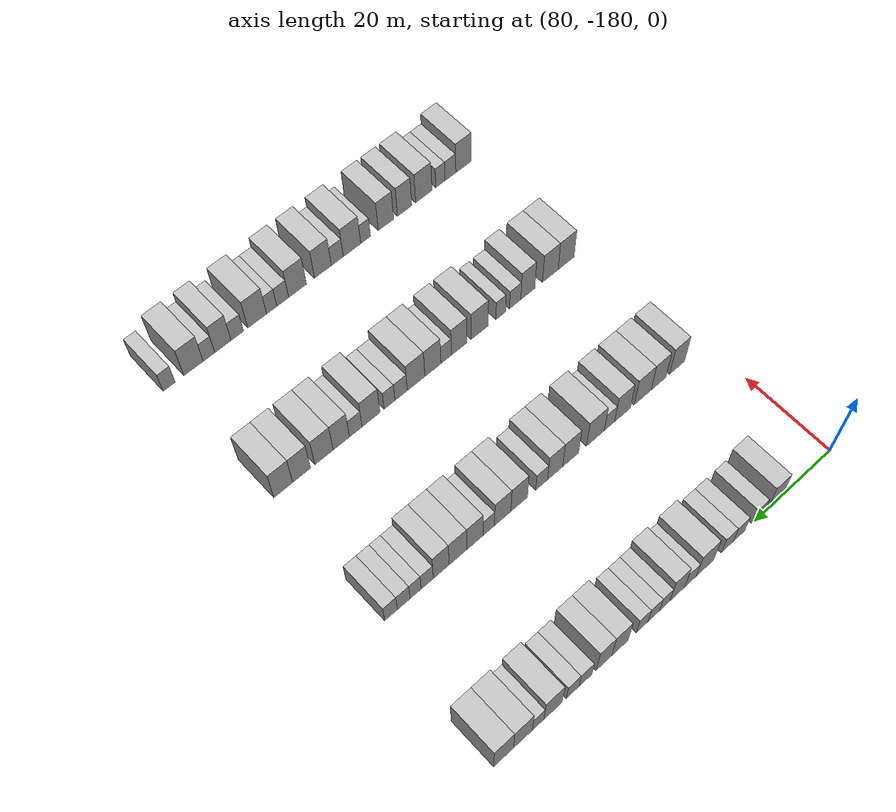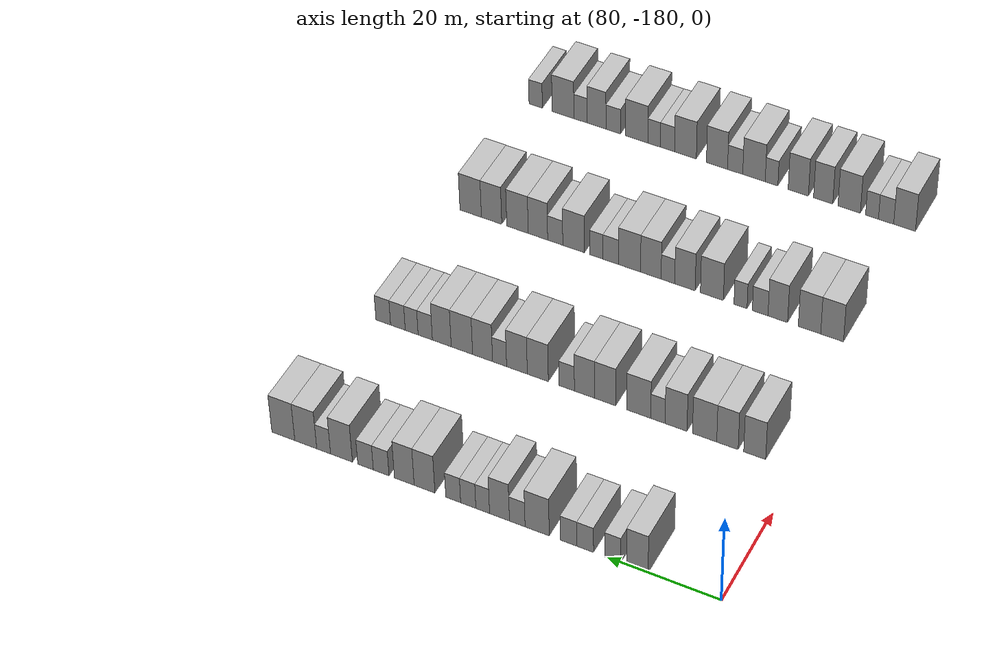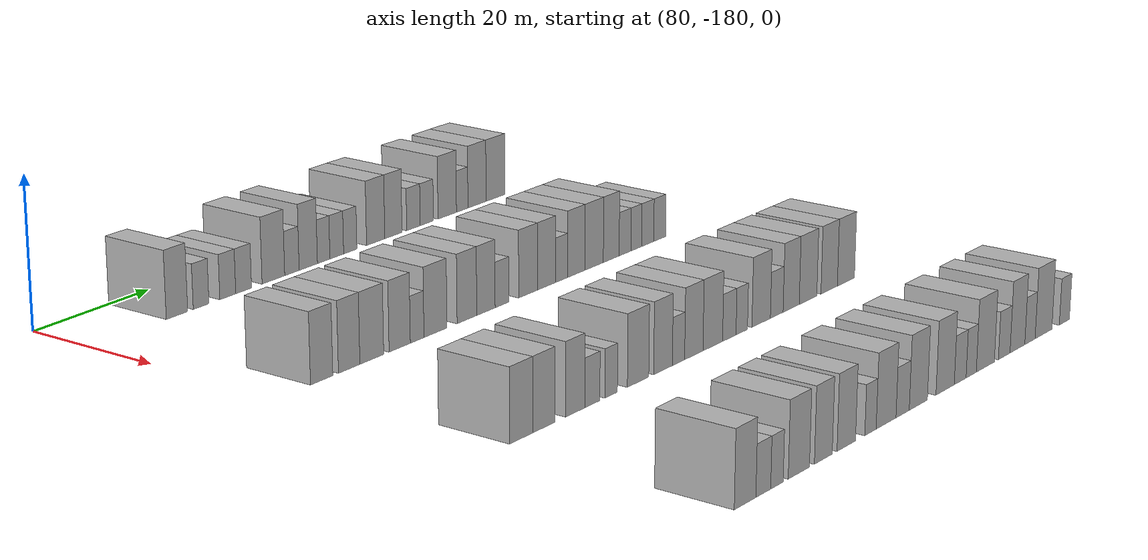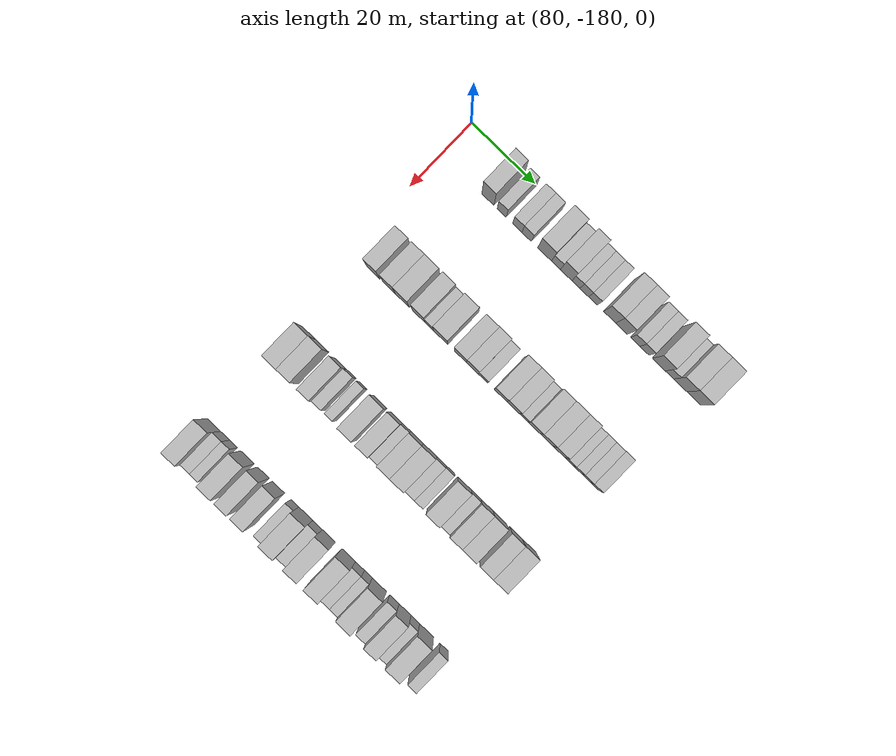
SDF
<sdf version="1.6">
 <world name="default">
  <model name="building_555">
   <static>1</static>
   <pose>85.0000 -165.1987 0 0.000000 0.000000 0.000000</pose>
   <link name="link">
    <pose>0 0 4.50 0 0 0</pose>
    <collision name="collision"><geometry><box><size>10.0000 3.8250 9.0000</size></box></geometry></collision>
    <visual name="visual">
     <cast_shadows>0</cast_shadows>
     <geometry><box><size>10.0000 3.8250 9.0000</size></box></geometry>
     <material>
      <script>
       <uri>model://HANNAS_wall/materials/scripts</uri>
       <uri>model://HANNAS_wall/materials/textures</uri>
       <name>vrc/HANNAS_wall</name>
      </script>
     </material>
    </visual>
   </link>
  </model>
  <model name="building_556">
   <static>1</static>
   <pose>85.0000 -160.8589 0 0.000000 0.000000 0.000000</pose>
   <link name="link">
    <pose>0 0 3.00 0 0 0</pose>
    <collision name="collision"><geometry><box><size>10.0000 2.8546 6.0000</size></box></geometry></collision>
    <visual name="visual">
     <cast_shadows>0</cast_shadows>
     <geometry><box><size>10.0000 2.8546 6.0000</size></box></geometry>
     <material>
      <script>
       <uri>model://HANNAS_wall/materials/scripts</uri>
       <uri>model://HANNAS_wall/materials/textures</uri>
       <name>vrc/HANNAS_wall</name>
      </script>
     </material>
    </visual>
   </link>
  </model>
  <model name="building_557">
   <static>1</static>
   <pose>85.0000 -155.9549 0 0.000000 0.000000 0.000000</pose>
   <link name="link">
    <pose>0 0 3.00 0 0 0</pose>
    <collision name="collision"><geometry><box><size>10.0000 2.9532 6.0000</size></box></geometry></collision>
    <visual name="visual">
     <cast_shadows>0</cast_shadows>
     <geometry><box><size>10.0000 2.9532 6.0000</size></box></geometry>
     <material>
      <script>
       <uri>model://HANNAS_wall/materials/scripts</uri>
       <uri>model://HANNAS_wall/materials/textures</uri>
       <name>vrc/HANNAS_wall</name>
      </script>
     </material>
    </visual>
   </link>
  </model>
  <model name="building_558">
   <static>1</static>
   <pose>85.0000 -152.9901 0 0.000000 0.000000 0.000000</pose>
   <link name="link">
    <pose>0 0 3.00 0 0 0</pose>
    <collision name="collision"><geometry><box><size>10.0000 2.9763 6.0000</size></box></geometry></collision>
    <visual name="visual">
     <cast_shadows>0</cast_shadows>
     <geometry><box><size>10.0000 2.9763 6.0000</size></box></geometry>
     <material>
      <script>
       <uri>model://HANNAS_wall/materials/scripts</uri>
       <uri>model://HANNAS_wall/materials/textures</uri>
       <name>vrc/HANNAS_wall</name>
      </script>
     </material>
    </visual>
   </link>
  </model>
  <model name="building_559">
   <static>1</static>
   <pose>85.0000 -147.3198 0 0.000000 0.000000 0.000000</pose>
   <link name="link">
    <pose>0 0 4.50 0 0 0</pose>
    <collision name="collision"><geometry><box><size>10.0000 4.3644 9.0000</size></box></geometry></collision>
    <visual name="visual">
     <cast_shadows>0</cast_shadows>
     <geometry><box><size>10.0000 4.3644 9.0000</size></box></geometry>
     <material>
      <script>
       <uri>model://HANNAS_wall/materials/scripts</uri>
       <uri>model://HANNAS_wall/materials/textures</uri>
       <name>vrc/HANNAS_wall</name>
      </script>
     </material>
    </visual>
   </link>
  </model>
  <model name="building_560">
   <static>1</static>
   <pose>85.0000 -143.7266 0 0.000000 0.000000 0.000000</pose>
   <link name="link">
    <pose>0 0 3.00 0 0 0</pose>
    <collision name="collision"><geometry><box><size>10.0000 2.8221 6.0000</size></box></geometry></collision>
    <visual name="visual">
     <cast_shadows>0</cast_shadows>
     <geometry><box><size>10.0000 2.8221 6.0000</size></box></geometry>
     <material>
      <script>
       <uri>model://HANNAS_wall/materials/scripts</uri>
       <uri>model://HANNAS_wall/materials/textures</uri>
       <name>vrc/HANNAS_wall</name>
      </script>
     </material>
    </visual>
   </link>
  </model>
  <model name="building_561">
   <static>1</static>
   <pose>85.0000 -140.5045 0 0.000000 0.000000 0.000000</pose>
   <link name="link">
    <pose>0 0 4.50 0 0 0</pose>
    <collision name="collision"><geometry><box><size>10.0000 3.6221 9.0000</size></box></geometry></collision>
    <visual name="visual">
     <cast_shadows>0</cast_shadows>
     <geometry><box><size>10.0000 3.6221 9.0000</size></box></geometry>
     <material>
      <script>
       <uri>model://HANNAS_wall/materials/scripts</uri>
       <uri>model://HANNAS_wall/materials/textures</uri>
       <name>vrc/HANNAS_wall</name>
      </script>
     </material>
    </visual>
   </link>
  </model>
  <model name="building_562">
   <static>1</static>
   <pose>85.0000 -137.4415 0 0.000000 0.000000 0.000000</pose>
   <link name="link">
    <pose>0 0 3.00 0 0 0</pose>
    <collision name="collision"><geometry><box><size>10.0000 2.5038 6.0000</size></box></geometry></collision>
    <visual name="visual">
     <cast_shadows>0</cast_shadows>
     <geometry><box><size>10.0000 2.5038 6.0000</size></box></geometry>
     <material>
      <script>
       <uri>model://HANNAS_wall/materials/scripts</uri>
       <uri>model://HANNAS_wall/materials/textures</uri>
       <name>vrc/HANNAS_wall</name>
      </script>
     </material>
    </visual>
   </link>
  </model>
  <model name="building_563">
   <static>1</static>
   <pose>85.0000 -134.7979 0 0.000000 0.000000 0.000000</pose>
   <link name="link">
    <pose>0 0 3.00 0 0 0</pose>
    <collision name="collision"><geometry><box><size>10.0000 2.7836 6.0000</size></box></geometry></collision>
    <visual name="visual">
     <cast_shadows>0</cast_shadows>
     <geometry><box><size>10.0000 2.7836 6.0000</size></box></geometry>
     <material>
      <script>
       <uri>model://HANNAS_wall/materials/scripts</uri>
       <uri>model://HANNAS_wall/materials/textures</uri>
       <name>vrc/HANNAS_wall</name>
      </script>
     </material>
    </visual>
   </link>
  </model>
  <model name="building_564">
   <static>1</static>
   <pose>85.0000 -132.0435 0 0.000000 0.000000 0.000000</pose>
   <link name="link">
    <pose>0 0 3.00 0 0 0</pose>
    <collision name="collision"><geometry><box><size>10.0000 2.7252 6.0000</size></box></geometry></collision>
    <visual name="visual">
     <cast_shadows>0</cast_shadows>
     <geometry><box><size>10.0000 2.7252 6.0000</size></box></geometry>
     <material>
      <script>
       <uri>model://HANNAS_wall/materials/scripts</uri>
       <uri>model://HANNAS_wall/materials/textures</uri>
       <name>vrc/HANNAS_wall</name>
      </script>
     </material>
    </visual>
   </link>
  </model>
  <model name="building_565">
   <static>1</static>
   <pose>85.0000 -126.7654 0 0.000000 0.000000 0.000000</pose>
   <link name="link">
    <pose>0 0 4.50 0 0 0</pose>
    <collision name="collision"><geometry><box><size>10.0000 3.8309 9.0000</size></box></geometry></collision>
    <visual name="visual">
     <cast_shadows>0</cast_shadows>
     <geometry><box><size>10.0000 3.8309 9.0000</size></box></geometry>
     <material>
      <script>
       <uri>model://HANNAS_wall/materials/scripts</uri>
       <uri>model://HANNAS_wall/materials/textures</uri>
       <name>vrc/HANNAS_wall</name>
      </script>
     </material>
    </visual>
   </link>
  </model>
  <model name="building_566">
   <static>1</static>
   <pose>85.0000 -123.0200 0 0.000000 0.000000 0.000000</pose>
   <link name="link">
    <pose>0 0 4.50 0 0 0</pose>
    <collision name="collision"><geometry><box><size>10.0000 3.6599 9.0000</size></box></geometry></collision>
    <visual name="visual">
     <cast_shadows>0</cast_shadows>
     <geometry><box><size>10.0000 3.6599 9.0000</size></box></geometry>
     <material>
      <script>
       <uri>model://HANNAS_wall/materials/scripts</uri>
       <uri>model://HANNAS_wall/materials/textures</uri>
       <name>vrc/HANNAS_wall</name>
      </script>
     </material>
    </visual>
   </link>
  </model>
  <model name="building_567">
   <static>1</static>
   <pose>85.0000 -118.7253 0 0.000000 0.000000 0.000000</pose>
   <link name="link">
    <pose>0 0 3.00 0 0 0</pose>
    <collision name="collision"><geometry><box><size>10.0000 2.9295 6.0000</size></box></geometry></collision>
    <visual name="visual">
     <cast_shadows>0</cast_shadows>
     <geometry><box><size>10.0000 2.9295 6.0000</size></box></geometry>
     <material>
      <script>
       <uri>model://HANNAS_wall/materials/scripts</uri>
       <uri>model://HANNAS_wall/materials/textures</uri>
       <name>vrc/HANNAS_wall</name>
      </script>
     </material>
    </visual>
   </link>
  </model>
  <model name="building_568">
   <static>1</static>
   <pose>85.0000 -115.8086 0 0.000000 0.000000 0.000000</pose>
   <link name="link">
    <pose>0 0 3.00 0 0 0</pose>
    <collision name="collision"><geometry><box><size>10.0000 2.9038 6.0000</size></box></geometry></collision>
    <visual name="visual">
     <cast_shadows>0</cast_shadows>
     <geometry><box><size>10.0000 2.9038 6.0000</size></box></geometry>
     <material>
      <script>
       <uri>model://HANNAS_wall/materials/scripts</uri>
       <uri>model://HANNAS_wall/materials/textures</uri>
       <name>vrc/HANNAS_wall</name>
      </script>
     </material>
    </visual>
   </link>
  </model>
  <model name="building_569">
   <static>1</static>
   <pose>85.0000 -111.3008 0 0.000000 0.000000 0.000000</pose>
   <link name="link">
    <pose>0 0 4.50 0 0 0</pose>
    <collision name="collision"><geometry><box><size>10.0000 4.1119 9.0000</size></box></geometry></collision>
    <visual name="visual">
     <cast_shadows>0</cast_shadows>
     <geometry><box><size>10.0000 4.1119 9.0000</size></box></geometry>
     <material>
      <script>
       <uri>model://HANNAS_wall/materials/scripts</uri>
       <uri>model://HANNAS_wall/materials/textures</uri>
       <name>vrc/HANNAS_wall</name>
      </script>
     </material>
    </visual>
   </link>
  </model>
  <model name="building_570">
   <static>1</static>
   <pose>85.0000 -107.9430 0 0.000000 0.000000 0.000000</pose>
   <link name="link">
    <pose>0 0 3.00 0 0 0</pose>
    <collision name="collision"><geometry><box><size>10.0000 2.6037 6.0000</size></box></geometry></collision>
    <visual name="visual">
     <cast_shadows>0</cast_shadows>
     <geometry><box><size>10.0000 2.6037 6.0000</size></box></geometry>
     <material>
      <script>
       <uri>model://HANNAS_wall/materials/scripts</uri>
       <uri>model://HANNAS_wall/materials/textures</uri>
       <name>vrc/HANNAS_wall</name>
      </script>
     </material>
    </visual>
   </link>
  </model>
  <model name="building_571">
   <static>1</static>
   <pose>85.0000 -104.5629 0 0.000000 0.000000 0.000000</pose>
   <link name="link">
    <pose>0 0 4.50 0 0 0</pose>
    <collision name="collision"><geometry><box><size>10.0000 4.1564 9.0000</size></box></geometry></collision>
    <visual name="visual">
     <cast_shadows>0</cast_shadows>
     <geometry><box><size>10.0000 4.1564 9.0000</size></box></geometry>
     <material>
      <script>
       <uri>model://HANNAS_wall/materials/scripts</uri>
       <uri>model://HANNAS_wall/materials/textures</uri>
       <name>vrc/HANNAS_wall</name>
      </script>
     </material>
    </visual>
   </link>
  </model>
  <model name="building_572">
   <static>1</static>
   <pose>85.0000 -100.3070 0 0.000000 0.000000 0.000000</pose>
   <link name="link">
    <pose>0 0 4.50 0 0 0</pose>
    <collision name="collision"><geometry><box><size>10.0000 4.3554 9.0000</size></box></geometry></collision>
    <visual name="visual">
     <cast_shadows>0</cast_shadows>
     <geometry><box><size>10.0000 4.3554 9.0000</size></box></geometry>
     <material>
      <script>
       <uri>model://HANNAS_wall/materials/scripts</uri>
       <uri>model://HANNAS_wall/materials/textures</uri>
       <name>vrc/HANNAS_wall</name>
      </script>
     </material>
    </visual>
   </link>
  </model>
  <model name="building_786">
   <static>1</static>
   <pose>115.0000 -172.2910 0 0.000000 0.000000 0.000000</pose>
   <link name="link">
    <pose>0 0 4.50 0 0 0</pose>
    <collision name="collision"><geometry><box><size>10.0000 3.9577 9.0000</size></box></geometry></collision>
    <visual name="visual">
     <cast_shadows>0</cast_shadows>
     <geometry><box><size>10.0000 3.9577 9.0000</size></box></geometry>
     <material>
      <script>
       <uri>model://HANNAS_wall/materials/scripts</uri>
       <uri>model://HANNAS_wall/materials/textures</uri>
       <name>vrc/HANNAS_wall</name>
      </script>
     </material>
    </visual>
   </link>
  </model>
  <model name="building_787">
   <static>1</static>
   <pose>115.0000 -167.3676 0 0.000000 0.000000 0.000000</pose>
   <link name="link">
    <pose>0 0 4.50 0 0 0</pose>
    <collision name="collision"><geometry><box><size>10.0000 3.8892 9.0000</size></box></geometry></collision>
    <visual name="visual">
     <cast_shadows>0</cast_shadows>
     <geometry><box><size>10.0000 3.8892 9.0000</size></box></geometry>
     <material>
      <script>
       <uri>model://HANNAS_wall/materials/scripts</uri>
       <uri>model://HANNAS_wall/materials/textures</uri>
       <name>vrc/HANNAS_wall</name>
      </script>
     </material>
    </visual>
   </link>
  </model>
  <model name="building_788">
   <static>1</static>
   <pose>115.0000 -163.2223 0 0.000000 0.000000 0.000000</pose>
   <link name="link">
    <pose>0 0 4.50 0 0 0</pose>
    <collision name="collision"><geometry><box><size>10.0000 4.4014 9.0000</size></box></geometry></collision>
    <visual name="visual">
     <cast_shadows>0</cast_shadows>
     <geometry><box><size>10.0000 4.4014 9.0000</size></box></geometry>
     <material>
      <script>
       <uri>model://HANNAS_wall/materials/scripts</uri>
       <uri>model://HANNAS_wall/materials/textures</uri>
       <name>vrc/HANNAS_wall</name>
      </script>
     </material>
    </visual>
   </link>
  </model>
  <model name="building_789">
   <static>1</static>
   <pose>115.0000 -158.0148 0 0.000000 0.000000 0.000000</pose>
   <link name="link">
    <pose>0 0 4.50 0 0 0</pose>
    <collision name="collision"><geometry><box><size>10.0000 4.0137 9.0000</size></box></geometry></collision>
    <visual name="visual">
     <cast_shadows>0</cast_shadows>
     <geometry><box><size>10.0000 4.0137 9.0000</size></box></geometry>
     <material>
      <script>
       <uri>model://HANNAS_wall/materials/scripts</uri>
       <uri>model://HANNAS_wall/materials/textures</uri>
       <name>vrc/HANNAS_wall</name>
      </script>
     </material>
    </visual>
   </link>
  </model>
  <model name="building_790">
   <static>1</static>
   <pose>115.0000 -154.6960 0 0.000000 0.000000 0.000000</pose>
   <link name="link">
    <pose>0 0 3.00 0 0 0</pose>
    <collision name="collision"><geometry><box><size>10.0000 2.6239 6.0000</size></box></geometry></collision>
    <visual name="visual">
     <cast_shadows>0</cast_shadows>
     <geometry><box><size>10.0000 2.6239 6.0000</size></box></geometry>
     <material>
      <script>
       <uri>model://HANNAS_wall/materials/scripts</uri>
       <uri>model://HANNAS_wall/materials/textures</uri>
       <name>vrc/HANNAS_wall</name>
      </script>
     </material>
    </visual>
   </link>
  </model>
  <model name="building_791">
   <static>1</static>
   <pose>115.0000 -151.1434 0 0.000000 0.000000 0.000000</pose>
   <link name="link">
    <pose>0 0 4.50 0 0 0</pose>
    <collision name="collision"><geometry><box><size>10.0000 4.4813 9.0000</size></box></geometry></collision>
    <visual name="visual">
     <cast_shadows>0</cast_shadows>
     <geometry><box><size>10.0000 4.4813 9.0000</size></box></geometry>
     <material>
      <script>
       <uri>model://HANNAS_wall/materials/scripts</uri>
       <uri>model://HANNAS_wall/materials/textures</uri>
       <name>vrc/HANNAS_wall</name>
      </script>
     </material>
    </visual>
   </link>
  </model>
  <model name="building_792">
   <static>1</static>
   <pose>115.0000 -144.9324 0 0.000000 0.000000 0.000000</pose>
   <link name="link">
    <pose>0 0 4.50 0 0 0</pose>
    <collision name="collision"><geometry><box><size>10.0000 3.9405 9.0000</size></box></geometry></collision>
    <visual name="visual">
     <cast_shadows>0</cast_shadows>
     <geometry><box><size>10.0000 3.9405 9.0000</size></box></geometry>
     <material>
      <script>
       <uri>model://HANNAS_wall/materials/scripts</uri>
       <uri>model://HANNAS_wall/materials/textures</uri>
       <name>vrc/HANNAS_wall</name>
      </script>
     </material>
    </visual>
   </link>
  </model>
  <model name="building_793">
   <static>1</static>
   <pose>115.0000 -141.0917 0 0.000000 0.000000 0.000000</pose>
   <link name="link">
    <pose>0 0 4.50 0 0 0</pose>
    <collision name="collision"><geometry><box><size>10.0000 3.7410 9.0000</size></box></geometry></collision>
    <visual name="visual">
     <cast_shadows>0</cast_shadows>
     <geometry><box><size>10.0000 3.7410 9.0000</size></box></geometry>
     <material>
      <script>
       <uri>model://HANNAS_wall/materials/scripts</uri>
       <uri>model://HANNAS_wall/materials/textures</uri>
       <name>vrc/HANNAS_wall</name>
      </script>
     </material>
    </visual>
   </link>
  </model>
  <model name="building_794">
   <static>1</static>
   <pose>115.0000 -137.7775 0 0.000000 0.000000 0.000000</pose>
   <link name="link">
    <pose>0 0 3.00 0 0 0</pose>
    <collision name="collision"><geometry><box><size>10.0000 2.8873 6.0000</size></box></geometry></collision>
    <visual name="visual">
     <cast_shadows>0</cast_shadows>
     <geometry><box><size>10.0000 2.8873 6.0000</size></box></geometry>
     <material>
      <script>
       <uri>model://HANNAS_wall/materials/scripts</uri>
       <uri>model://HANNAS_wall/materials/textures</uri>
       <name>vrc/HANNAS_wall</name>
      </script>
     </material>
    </visual>
   </link>
  </model>
  <model name="building_795">
   <static>1</static>
   <pose>115.0000 -132.3534 0 0.000000 0.000000 0.000000</pose>
   <link name="link">
    <pose>0 0 4.50 0 0 0</pose>
    <collision name="collision"><geometry><box><size>10.0000 3.9609 9.0000</size></box></geometry></collision>
    <visual name="visual">
     <cast_shadows>0</cast_shadows>
     <geometry><box><size>10.0000 3.9609 9.0000</size></box></geometry>
     <material>
      <script>
       <uri>model://HANNAS_wall/materials/scripts</uri>
       <uri>model://HANNAS_wall/materials/textures</uri>
       <name>vrc/HANNAS_wall</name>
      </script>
     </material>
    </visual>
   </link>
  </model>
  <model name="building_796">
   <static>1</static>
   <pose>115.0000 -128.4126 0 0.000000 0.000000 0.000000</pose>
   <link name="link">
    <pose>0 0 4.50 0 0 0</pose>
    <collision name="collision"><geometry><box><size>10.0000 3.9208 9.0000</size></box></geometry></collision>
    <visual name="visual">
     <cast_shadows>0</cast_shadows>
     <geometry><box><size>10.0000 3.9208 9.0000</size></box></geometry>
     <material>
      <script>
       <uri>model://HANNAS_wall/materials/scripts</uri>
       <uri>model://HANNAS_wall/materials/textures</uri>
       <name>vrc/HANNAS_wall</name>
      </script>
     </material>
    </visual>
   </link>
  </model>
  <model name="building_797">
   <static>1</static>
   <pose>115.0000 -125.1224 0 0.000000 0.000000 0.000000</pose>
   <link name="link">
    <pose>0 0 3.00 0 0 0</pose>
    <collision name="collision"><geometry><box><size>10.0000 2.6594 6.0000</size></box></geometry></collision>
    <visual name="visual">
     <cast_shadows>0</cast_shadows>
     <geometry><box><size>10.0000 2.6594 6.0000</size></box></geometry>
     <material>
      <script>
       <uri>model://HANNAS_wall/materials/scripts</uri>
       <uri>model://HANNAS_wall/materials/textures</uri>
       <name>vrc/HANNAS_wall</name>
      </script>
     </material>
    </visual>
   </link>
  </model>
  <model name="building_798">
   <static>1</static>
   <pose>115.0000 -121.8910 0 0.000000 0.000000 0.000000</pose>
   <link name="link">
    <pose>0 0 4.50 0 0 0</pose>
    <collision name="collision"><geometry><box><size>10.0000 3.8035 9.0000</size></box></geometry></collision>
    <visual name="visual">
     <cast_shadows>0</cast_shadows>
     <geometry><box><size>10.0000 3.8035 9.0000</size></box></geometry>
     <material>
      <script>
       <uri>model://HANNAS_wall/materials/scripts</uri>
       <uri>model://HANNAS_wall/materials/textures</uri>
       <name>vrc/HANNAS_wall</name>
      </script>
     </material>
    </visual>
   </link>
  </model>
  <model name="building_799">
   <static>1</static>
   <pose>115.0000 -117.9380 0 0.000000 0.000000 0.000000</pose>
   <link name="link">
    <pose>0 0 4.50 0 0 0</pose>
    <collision name="collision"><geometry><box><size>10.0000 4.1024 9.0000</size></box></geometry></collision>
    <visual name="visual">
     <cast_shadows>0</cast_shadows>
     <geometry><box><size>10.0000 4.1024 9.0000</size></box></geometry>
     <material>
      <script>
       <uri>model://HANNAS_wall/materials/scripts</uri>
       <uri>model://HANNAS_wall/materials/textures</uri>
       <name>vrc/HANNAS_wall</name>
      </script>
     </material>
    </visual>
   </link>
  </model>
  <model name="building_800">
   <static>1</static>
   <pose>115.0000 -114.0779 0 0.000000 0.000000 0.000000</pose>
   <link name="link">
    <pose>0 0 4.50 0 0 0</pose>
    <collision name="collision"><geometry><box><size>10.0000 3.6178 9.0000</size></box></geometry></collision>
    <visual name="visual">
     <cast_shadows>0</cast_shadows>
     <geometry><box><size>10.0000 3.6178 9.0000</size></box></geometry>
     <material>
      <script>
       <uri>model://HANNAS_wall/materials/scripts</uri>
       <uri>model://HANNAS_wall/materials/textures</uri>
       <name>vrc/HANNAS_wall</name>
      </script>
     </material>
    </visual>
   </link>
  </model>
  <model name="building_801">
   <static>1</static>
   <pose>115.0000 -110.8911 0 0.000000 0.000000 0.000000</pose>
   <link name="link">
    <pose>0 0 3.00 0 0 0</pose>
    <collision name="collision"><geometry><box><size>10.0000 2.7558 6.0000</size></box></geometry></collision>
    <visual name="visual">
     <cast_shadows>0</cast_shadows>
     <geometry><box><size>10.0000 2.7558 6.0000</size></box></geometry>
     <material>
      <script>
       <uri>model://HANNAS_wall/materials/scripts</uri>
       <uri>model://HANNAS_wall/materials/textures</uri>
       <name>vrc/HANNAS_wall</name>
      </script>
     </material>
    </visual>
   </link>
  </model>
  <model name="building_802">
   <static>1</static>
   <pose>115.0000 -108.2695 0 0.000000 0.000000 0.000000</pose>
   <link name="link">
    <pose>0 0 3.00 0 0 0</pose>
    <collision name="collision"><geometry><box><size>10.0000 2.4874 6.0000</size></box></geometry></collision>
    <visual name="visual">
     <cast_shadows>0</cast_shadows>
     <geometry><box><size>10.0000 2.4874 6.0000</size></box></geometry>
     <material>
      <script>
       <uri>model://HANNAS_wall/materials/scripts</uri>
       <uri>model://HANNAS_wall/materials/textures</uri>
       <name>vrc/HANNAS_wall</name>
      </script>
     </material>
    </visual>
   </link>
  </model>
  <model name="building_803">
   <static>1</static>
   <pose>115.0000 -105.6044 0 0.000000 0.000000 0.000000</pose>
   <link name="link">
    <pose>0 0 3.00 0 0 0</pose>
    <collision name="collision"><geometry><box><size>10.0000 2.8429 6.0000</size></box></geometry></collision>
    <visual name="visual">
     <cast_shadows>0</cast_shadows>
     <geometry><box><size>10.0000 2.8429 6.0000</size></box></geometry>
     <material>
      <script>
       <uri>model://HANNAS_wall/materials/scripts</uri>
       <uri>model://HANNAS_wall/materials/textures</uri>
       <name>vrc/HANNAS_wall</name>
      </script>
     </material>
    </visual>
   </link>
  </model>
  <model name="building_804">
   <static>1</static>
   <pose>115.0000 -102.7606 0 0.000000 0.000000 0.000000</pose>
   <link name="link">
    <pose>0 0 3.00 0 0 0</pose>
    <collision name="collision"><geometry><box><size>10.0000 2.8446 6.0000</size></box></geometry></collision>
    <visual name="visual">
     <cast_shadows>0</cast_shadows>
     <geometry><box><size>10.0000 2.8446 6.0000</size></box></geometry>
     <material>
      <script>
       <uri>model://HANNAS_wall/materials/scripts</uri>
       <uri>model://HANNAS_wall/materials/textures</uri>
       <name>vrc/HANNAS_wall</name>
      </script>
     </material>
    </visual>
   </link>
  </model>
  <model name="building_1025">
   <static>1</static>
   <pose>145.0000 -173.3275 0 0.000000 0.000000 0.000000</pose>
   <link name="link">
    <pose>0 0 4.50 0 0 0</pose>
    <collision name="collision"><geometry><box><size>10.0000 4.2271 9.0000</size></box></geometry></collision>
    <visual name="visual">
     <cast_shadows>0</cast_shadows>
     <geometry><box><size>10.0000 4.2271 9.0000</size></box></geometry>
     <material>
      <script>
       <uri>model://HANNAS_wall/materials/scripts</uri>
       <uri>model://HANNAS_wall/materials/textures</uri>
       <name>vrc/HANNAS_wall</name>
      </script>
     </material>
    </visual>
   </link>
  </model>
  <model name="building_1026">
   <static>1</static>
   <pose>145.0000 -169.1367 0 0.000000 0.000000 0.000000</pose>
   <link name="link">
    <pose>0 0 4.50 0 0 0</pose>
    <collision name="collision"><geometry><box><size>10.0000 4.1545 9.0000</size></box></geometry></collision>
    <visual name="visual">
     <cast_shadows>0</cast_shadows>
     <geometry><box><size>10.0000 4.1545 9.0000</size></box></geometry>
     <material>
      <script>
       <uri>model://HANNAS_wall/materials/scripts</uri>
       <uri>model://HANNAS_wall/materials/textures</uri>
       <name>vrc/HANNAS_wall</name>
      </script>
     </material>
    </visual>
   </link>
  </model>
  <model name="building_1027">
   <static>1</static>
   <pose>145.0000 -163.2317 0 0.000000 0.000000 0.000000</pose>
   <link name="link">
    <pose>0 0 4.50 0 0 0</pose>
    <collision name="collision"><geometry><box><size>10.0000 3.6555 9.0000</size></box></geometry></collision>
    <visual name="visual">
     <cast_shadows>0</cast_shadows>
     <geometry><box><size>10.0000 3.6555 9.0000</size></box></geometry>
     <material>
      <script>
       <uri>model://HANNAS_wall/materials/scripts</uri>
       <uri>model://HANNAS_wall/materials/textures</uri>
       <name>vrc/HANNAS_wall</name>
      </script>
     </material>
    </visual>
   </link>
  </model>
  <model name="building_1028">
   <static>1</static>
   <pose>145.0000 -159.9354 0 0.000000 0.000000 0.000000</pose>
   <link name="link">
    <pose>0 0 3.00 0 0 0</pose>
    <collision name="collision"><geometry><box><size>10.0000 2.9371 6.0000</size></box></geometry></collision>
    <visual name="visual">
     <cast_shadows>0</cast_shadows>
     <geometry><box><size>10.0000 2.9371 6.0000</size></box></geometry>
     <material>
      <script>
       <uri>model://HANNAS_wall/materials/scripts</uri>
       <uri>model://HANNAS_wall/materials/textures</uri>
       <name>vrc/HANNAS_wall</name>
      </script>
     </material>
    </visual>
   </link>
  </model>
  <model name="building_1029">
   <static>1</static>
   <pose>145.0000 -156.2364 0 0.000000 0.000000 0.000000</pose>
   <link name="link">
    <pose>0 0 3.00 0 0 0</pose>
    <collision name="collision"><geometry><box><size>10.0000 2.4609 6.0000</size></box></geometry></collision>
    <visual name="visual">
     <cast_shadows>0</cast_shadows>
     <geometry><box><size>10.0000 2.4609 6.0000</size></box></geometry>
     <material>
      <script>
       <uri>model://HANNAS_wall/materials/scripts</uri>
       <uri>model://HANNAS_wall/materials/textures</uri>
       <name>vrc/HANNAS_wall</name>
      </script>
     </material>
    </visual>
   </link>
  </model>
  <model name="building_1030">
   <static>1</static>
   <pose>145.0000 -150.8313 0 0.000000 0.000000 0.000000</pose>
   <link name="link">
    <pose>0 0 4.50 0 0 0</pose>
    <collision name="collision"><geometry><box><size>10.0000 4.3493 9.0000</size></box></geometry></collision>
    <visual name="visual">
     <cast_shadows>0</cast_shadows>
     <geometry><box><size>10.0000 4.3493 9.0000</size></box></geometry>
     <material>
      <script>
       <uri>model://HANNAS_wall/materials/scripts</uri>
       <uri>model://HANNAS_wall/materials/textures</uri>
       <name>vrc/HANNAS_wall</name>
      </script>
     </material>
    </visual>
   </link>
  </model>
  <model name="building_1031">
   <static>1</static>
   <pose>145.0000 -145.7119 0 0.000000 0.000000 0.000000</pose>
   <link name="link">
    <pose>0 0 4.50 0 0 0</pose>
    <collision name="collision"><geometry><box><size>10.0000 3.8895 9.0000</size></box></geometry></collision>
    <visual name="visual">
     <cast_shadows>0</cast_shadows>
     <geometry><box><size>10.0000 3.8895 9.0000</size></box></geometry>
     <material>
      <script>
       <uri>model://HANNAS_wall/materials/scripts</uri>
       <uri>model://HANNAS_wall/materials/textures</uri>
       <name>vrc/HANNAS_wall</name>
      </script>
     </material>
    </visual>
   </link>
  </model>
  <model name="building_1032">
   <static>1</static>
   <pose>145.0000 -142.4704 0 0.000000 0.000000 0.000000</pose>
   <link name="link">
    <pose>0 0 3.00 0 0 0</pose>
    <collision name="collision"><geometry><box><size>10.0000 2.5937 6.0000</size></box></geometry></collision>
    <visual name="visual">
     <cast_shadows>0</cast_shadows>
     <geometry><box><size>10.0000 2.5937 6.0000</size></box></geometry>
     <material>
      <script>
       <uri>model://HANNAS_wall/materials/scripts</uri>
       <uri>model://HANNAS_wall/materials/textures</uri>
       <name>vrc/HANNAS_wall</name>
      </script>
     </material>
    </visual>
   </link>
  </model>
  <model name="building_1033">
   <static>1</static>
   <pose>145.0000 -139.2041 0 0.000000 0.000000 0.000000</pose>
   <link name="link">
    <pose>0 0 4.50 0 0 0</pose>
    <collision name="collision"><geometry><box><size>10.0000 3.9388 9.0000</size></box></geometry></collision>
    <visual name="visual">
     <cast_shadows>0</cast_shadows>
     <geometry><box><size>10.0000 3.9388 9.0000</size></box></geometry>
     <material>
      <script>
       <uri>model://HANNAS_wall/materials/scripts</uri>
       <uri>model://HANNAS_wall/materials/textures</uri>
       <name>vrc/HANNAS_wall</name>
      </script>
     </material>
    </visual>
   </link>
  </model>
  <model name="building_1034">
   <static>1</static>
   <pose>145.0000 -135.0940 0 0.000000 0.000000 0.000000</pose>
   <link name="link">
    <pose>0 0 4.50 0 0 0</pose>
    <collision name="collision"><geometry><box><size>10.0000 4.2813 9.0000</size></box></geometry></collision>
    <visual name="visual">
     <cast_shadows>0</cast_shadows>
     <geometry><box><size>10.0000 4.2813 9.0000</size></box></geometry>
     <material>
      <script>
       <uri>model://HANNAS_wall/materials/scripts</uri>
       <uri>model://HANNAS_wall/materials/textures</uri>
       <name>vrc/HANNAS_wall</name>
      </script>
     </material>
    </visual>
   </link>
  </model>
  <model name="building_1035">
   <static>1</static>
   <pose>145.0000 -131.4594 0 0.000000 0.000000 0.000000</pose>
   <link name="link">
    <pose>0 0 3.00 0 0 0</pose>
    <collision name="collision"><geometry><box><size>10.0000 2.9878 6.0000</size></box></geometry></collision>
    <visual name="visual">
     <cast_shadows>0</cast_shadows>
     <geometry><box><size>10.0000 2.9878 6.0000</size></box></geometry>
     <material>
      <script>
       <uri>model://HANNAS_wall/materials/scripts</uri>
       <uri>model://HANNAS_wall/materials/textures</uri>
       <name>vrc/HANNAS_wall</name>
      </script>
     </material>
    </visual>
   </link>
  </model>
  <model name="building_1036">
   <static>1</static>
   <pose>145.0000 -128.6769 0 0.000000 0.000000 0.000000</pose>
   <link name="link">
    <pose>0 0 3.00 0 0 0</pose>
    <collision name="collision"><geometry><box><size>10.0000 2.5773 6.0000</size></box></geometry></collision>
    <visual name="visual">
     <cast_shadows>0</cast_shadows>
     <geometry><box><size>10.0000 2.5773 6.0000</size></box></geometry>
     <material>
      <script>
       <uri>model://HANNAS_wall/materials/scripts</uri>
       <uri>model://HANNAS_wall/materials/textures</uri>
       <name>vrc/HANNAS_wall</name>
      </script>
     </material>
    </visual>
   </link>
  </model>
  <model name="building_1037">
   <static>1</static>
   <pose>145.0000 -124.2706 0 0.000000 0.000000 0.000000</pose>
   <link name="link">
    <pose>0 0 4.50 0 0 0</pose>
    <collision name="collision"><geometry><box><size>10.0000 4.2352 9.0000</size></box></geometry></collision>
    <visual name="visual">
     <cast_shadows>0</cast_shadows>
     <geometry><box><size>10.0000 4.2352 9.0000</size></box></geometry>
     <material>
      <script>
       <uri>model://HANNAS_wall/materials/scripts</uri>
       <uri>model://HANNAS_wall/materials/textures</uri>
       <name>vrc/HANNAS_wall</name>
      </script>
     </material>
    </visual>
   </link>
  </model>
  <model name="building_1038">
   <static>1</static>
   <pose>145.0000 -120.6717 0 0.000000 0.000000 0.000000</pose>
   <link name="link">
    <pose>0 0 3.00 0 0 0</pose>
    <collision name="collision"><geometry><box><size>10.0000 2.9627 6.0000</size></box></geometry></collision>
    <visual name="visual">
     <cast_shadows>0</cast_shadows>
     <geometry><box><size>10.0000 2.9627 6.0000</size></box></geometry>
     <material>
      <script>
       <uri>model://HANNAS_wall/materials/scripts</uri>
       <uri>model://HANNAS_wall/materials/textures</uri>
       <name>vrc/HANNAS_wall</name>
      </script>
     </material>
    </visual>
   </link>
  </model>
  <model name="building_1039">
   <static>1</static>
   <pose>145.0000 -117.2862 0 0.000000 0.000000 0.000000</pose>
   <link name="link">
    <pose>0 0 4.50 0 0 0</pose>
    <collision name="collision"><geometry><box><size>10.0000 3.8084 9.0000</size></box></geometry></collision>
    <visual name="visual">
     <cast_shadows>0</cast_shadows>
     <geometry><box><size>10.0000 3.8084 9.0000</size></box></geometry>
     <material>
      <script>
       <uri>model://HANNAS_wall/materials/scripts</uri>
       <uri>model://HANNAS_wall/materials/textures</uri>
       <name>vrc/HANNAS_wall</name>
      </script>
     </material>
    </visual>
   </link>
  </model>
  <model name="building_1040">
   <static>1</static>
   <pose>145.0000 -113.2661 0 0.000000 0.000000 0.000000</pose>
   <link name="link">
    <pose>0 0 4.50 0 0 0</pose>
    <collision name="collision"><geometry><box><size>10.0000 4.2318 9.0000</size></box></geometry></collision>
    <visual name="visual">
     <cast_shadows>0</cast_shadows>
     <geometry><box><size>10.0000 4.2318 9.0000</size></box></geometry>
     <material>
      <script>
       <uri>model://HANNAS_wall/materials/scripts</uri>
       <uri>model://HANNAS_wall/materials/textures</uri>
       <name>vrc/HANNAS_wall</name>
      </script>
     </material>
    </visual>
   </link>
  </model>
  <model name="building_1041">
   <static>1</static>
   <pose>145.0000 -108.1332 0 0.000000 0.000000 0.000000</pose>
   <link name="link">
    <pose>0 0 4.50 0 0 0</pose>
    <collision name="collision"><geometry><box><size>10.0000 4.0339 9.0000</size></box></geometry></collision>
    <visual name="visual">
     <cast_shadows>0</cast_shadows>
     <geometry><box><size>10.0000 4.0339 9.0000</size></box></geometry>
     <material>
      <script>
       <uri>model://HANNAS_wall/materials/scripts</uri>
       <uri>model://HANNAS_wall/materials/textures</uri>
       <name>vrc/HANNAS_wall</name>
      </script>
     </material>
    </visual>
   </link>
  </model>
  <model name="building_1042">
   <static>1</static>
   <pose>145.0000 -103.9807 0 0.000000 0.000000 0.000000</pose>
   <link name="link">
    <pose>0 0 4.50 0 0 0</pose>
    <collision name="collision"><geometry><box><size>10.0000 4.2712 9.0000</size></box></geometry></collision>
    <visual name="visual">
     <cast_shadows>0</cast_shadows>
     <geometry><box><size>10.0000 4.2712 9.0000</size></box></geometry>
     <material>
      <script>
       <uri>model://HANNAS_wall/materials/scripts</uri>
       <uri>model://HANNAS_wall/materials/textures</uri>
       <name>vrc/HANNAS_wall</name>
      </script>
     </material>
    </visual>
   </link>
  </model>
  <model name="building_1262">
   <static>1</static>
   <pose>175.0000 -174.3804 0 0.000000 0.000000 0.000000</pose>
   <link name="link">
    <pose>0 0 4.50 0 0 0</pose>
    <collision name="collision"><geometry><box><size>10.0000 4.1356 9.0000</size></box></geometry></collision>
    <visual name="visual">
     <cast_shadows>0</cast_shadows>
     <geometry><box><size>10.0000 4.1356 9.0000</size></box></geometry>
     <material>
      <script>
       <uri>model://HANNAS_wall/materials/scripts</uri>
       <uri>model://HANNAS_wall/materials/textures</uri>
       <name>vrc/HANNAS_wall</name>
      </script>
     </material>
    </visual>
   </link>
  </model>
  <model name="building_1263">
   <static>1</static>
   <pose>175.0000 -170.8679 0 0.000000 0.000000 0.000000</pose>
   <link name="link">
    <pose>0 0 3.00 0 0 0</pose>
    <collision name="collision"><geometry><box><size>10.0000 2.8894 6.0000</size></box></geometry></collision>
    <visual name="visual">
     <cast_shadows>0</cast_shadows>
     <geometry><box><size>10.0000 2.8894 6.0000</size></box></geometry>
     <material>
      <script>
       <uri>model://HANNAS_wall/materials/scripts</uri>
       <uri>model://HANNAS_wall/materials/textures</uri>
       <name>vrc/HANNAS_wall</name>
      </script>
     </material>
    </visual>
   </link>
  </model>
  <model name="building_1264">
   <static>1</static>
   <pose>175.0000 -168.1910 0 0.000000 0.000000 0.000000</pose>
   <link name="link">
    <pose>0 0 3.00 0 0 0</pose>
    <collision name="collision"><geometry><box><size>10.0000 2.4645 6.0000</size></box></geometry></collision>
    <visual name="visual">
     <cast_shadows>0</cast_shadows>
     <geometry><box><size>10.0000 2.4645 6.0000</size></box></geometry>
     <material>
      <script>
       <uri>model://HANNAS_wall/materials/scripts</uri>
       <uri>model://HANNAS_wall/materials/textures</uri>
       <name>vrc/HANNAS_wall</name>
      </script>
     </material>
    </visual>
   </link>
  </model>
  <model name="building_1265">
   <static>1</static>
   <pose>175.0000 -163.8118 0 0.000000 0.000000 0.000000</pose>
   <link name="link">
    <pose>0 0 4.50 0 0 0</pose>
    <collision name="collision"><geometry><box><size>10.0000 4.2939 9.0000</size></box></geometry></collision>
    <visual name="visual">
     <cast_shadows>0</cast_shadows>
     <geometry><box><size>10.0000 4.2939 9.0000</size></box></geometry>
     <material>
      <script>
       <uri>model://HANNAS_wall/materials/scripts</uri>
       <uri>model://HANNAS_wall/materials/textures</uri>
       <name>vrc/HANNAS_wall</name>
      </script>
     </material>
    </visual>
   </link>
  </model>
  <model name="building_1266">
   <static>1</static>
   <pose>175.0000 -158.8124 0 0.000000 0.000000 0.000000</pose>
   <link name="link">
    <pose>0 0 4.50 0 0 0</pose>
    <collision name="collision"><geometry><box><size>10.0000 3.7049 9.0000</size></box></geometry></collision>
    <visual name="visual">
     <cast_shadows>0</cast_shadows>
     <geometry><box><size>10.0000 3.7049 9.0000</size></box></geometry>
     <material>
      <script>
       <uri>model://HANNAS_wall/materials/scripts</uri>
       <uri>model://HANNAS_wall/materials/textures</uri>
       <name>vrc/HANNAS_wall</name>
      </script>
     </material>
    </visual>
   </link>
  </model>
  <model name="building_1267">
   <static>1</static>
   <pose>175.0000 -154.0007 0 0.000000 0.000000 0.000000</pose>
   <link name="link">
    <pose>0 0 4.50 0 0 0</pose>
    <collision name="collision"><geometry><box><size>10.0000 3.9186 9.0000</size></box></geometry></collision>
    <visual name="visual">
     <cast_shadows>0</cast_shadows>
     <geometry><box><size>10.0000 3.9186 9.0000</size></box></geometry>
     <material>
      <script>
       <uri>model://HANNAS_wall/materials/scripts</uri>
       <uri>model://HANNAS_wall/materials/textures</uri>
       <name>vrc/HANNAS_wall</name>
      </script>
     </material>
    </visual>
   </link>
  </model>
  <model name="building_1268">
   <static>1</static>
   <pose>175.0000 -148.8056 0 0.000000 0.000000 0.000000</pose>
   <link name="link">
    <pose>0 0 3.00 0 0 0</pose>
    <collision name="collision"><geometry><box><size>10.0000 2.4715 6.0000</size></box></geometry></collision>
    <visual name="visual">
     <cast_shadows>0</cast_shadows>
     <geometry><box><size>10.0000 2.4715 6.0000</size></box></geometry>
     <material>
      <script>
       <uri>model://HANNAS_wall/materials/scripts</uri>
       <uri>model://HANNAS_wall/materials/textures</uri>
       <name>vrc/HANNAS_wall</name>
      </script>
     </material>
    </visual>
   </link>
  </model>
  <model name="building_1269">
   <static>1</static>
   <pose>175.0000 -145.3725 0 0.000000 0.000000 0.000000</pose>
   <link name="link">
    <pose>0 0 4.50 0 0 0</pose>
    <collision name="collision"><geometry><box><size>10.0000 4.3947 9.0000</size></box></geometry></collision>
    <visual name="visual">
     <cast_shadows>0</cast_shadows>
     <geometry><box><size>10.0000 4.3947 9.0000</size></box></geometry>
     <material>
      <script>
       <uri>model://HANNAS_wall/materials/scripts</uri>
       <uri>model://HANNAS_wall/materials/textures</uri>
       <name>vrc/HANNAS_wall</name>
      </script>
     </material>
    </visual>
   </link>
  </model>
  <model name="building_1270">
   <static>1</static>
   <pose>175.0000 -141.6851 0 0.000000 0.000000 0.000000</pose>
   <link name="link">
    <pose>0 0 3.00 0 0 0</pose>
    <collision name="collision"><geometry><box><size>10.0000 2.9800 6.0000</size></box></geometry></collision>
    <visual name="visual">
     <cast_shadows>0</cast_shadows>
     <geometry><box><size>10.0000 2.9800 6.0000</size></box></geometry>
     <material>
      <script>
       <uri>model://HANNAS_wall/materials/scripts</uri>
       <uri>model://HANNAS_wall/materials/textures</uri>
       <name>vrc/HANNAS_wall</name>
      </script>
     </material>
    </visual>
   </link>
  </model>
  <model name="building_1271">
   <static>1</static>
   <pose>175.0000 -138.1164 0 0.000000 0.000000 0.000000</pose>
   <link name="link">
    <pose>0 0 4.50 0 0 0</pose>
    <collision name="collision"><geometry><box><size>10.0000 4.1573 9.0000</size></box></geometry></collision>
    <visual name="visual">
     <cast_shadows>0</cast_shadows>
     <geometry><box><size>10.0000 4.1573 9.0000</size></box></geometry>
     <material>
      <script>
       <uri>model://HANNAS_wall/materials/scripts</uri>
       <uri>model://HANNAS_wall/materials/textures</uri>
       <name>vrc/HANNAS_wall</name>
      </script>
     </material>
    </visual>
   </link>
  </model>
  <model name="building_1272">
   <static>1</static>
   <pose>175.0000 -131.8789 0 0.000000 0.000000 0.000000</pose>
   <link name="link">
    <pose>0 0 4.50 0 0 0</pose>
    <collision name="collision"><geometry><box><size>10.0000 4.3178 9.0000</size></box></geometry></collision>
    <visual name="visual">
     <cast_shadows>0</cast_shadows>
     <geometry><box><size>10.0000 4.3178 9.0000</size></box></geometry>
     <material>
      <script>
       <uri>model://HANNAS_wall/materials/scripts</uri>
       <uri>model://HANNAS_wall/materials/textures</uri>
       <name>vrc/HANNAS_wall</name>
      </script>
     </material>
    </visual>
   </link>
  </model>
  <model name="building_1273">
   <static>1</static>
   <pose>175.0000 -128.2986 0 0.000000 0.000000 0.000000</pose>
   <link name="link">
    <pose>0 0 3.00 0 0 0</pose>
    <collision name="collision"><geometry><box><size>10.0000 2.8428 6.0000</size></box></geometry></collision>
    <visual name="visual">
     <cast_shadows>0</cast_shadows>
     <geometry><box><size>10.0000 2.8428 6.0000</size></box></geometry>
     <material>
      <script>
       <uri>model://HANNAS_wall/materials/scripts</uri>
       <uri>model://HANNAS_wall/materials/textures</uri>
       <name>vrc/HANNAS_wall</name>
      </script>
     </material>
    </visual>
   </link>
  </model>
  <model name="building_1274">
   <static>1</static>
   <pose>175.0000 -125.6375 0 0.000000 0.000000 0.000000</pose>
   <link name="link">
    <pose>0 0 3.00 0 0 0</pose>
    <collision name="collision"><geometry><box><size>10.0000 2.4793 6.0000</size></box></geometry></collision>
    <visual name="visual">
     <cast_shadows>0</cast_shadows>
     <geometry><box><size>10.0000 2.4793 6.0000</size></box></geometry>
     <material>
      <script>
       <uri>model://HANNAS_wall/materials/scripts</uri>
       <uri>model://HANNAS_wall/materials/textures</uri>
       <name>vrc/HANNAS_wall</name>
      </script>
     </material>
    </visual>
   </link>
  </model>
  <model name="building_1275">
   <static>1</static>
   <pose>175.0000 -122.1667 0 0.000000 0.000000 0.000000</pose>
   <link name="link">
    <pose>0 0 4.50 0 0 0</pose>
    <collision name="collision"><geometry><box><size>10.0000 4.4624 9.0000</size></box></geometry></collision>
    <visual name="visual">
     <cast_shadows>0</cast_shadows>
     <geometry><box><size>10.0000 4.4624 9.0000</size></box></geometry>
     <material>
      <script>
       <uri>model://HANNAS_wall/materials/scripts</uri>
       <uri>model://HANNAS_wall/materials/textures</uri>
       <name>vrc/HANNAS_wall</name>
      </script>
     </material>
    </visual>
   </link>
  </model>
  <model name="building_1276">
   <static>1</static>
   <pose>175.0000 -117.4643 0 0.000000 0.000000 0.000000</pose>
   <link name="link">
    <pose>0 0 3.00 0 0 0</pose>
    <collision name="collision"><geometry><box><size>10.0000 2.9423 6.0000</size></box></geometry></collision>
    <visual name="visual">
     <cast_shadows>0</cast_shadows>
     <geometry><box><size>10.0000 2.9423 6.0000</size></box></geometry>
     <material>
      <script>
       <uri>model://HANNAS_wall/materials/scripts</uri>
       <uri>model://HANNAS_wall/materials/textures</uri>
       <name>vrc/HANNAS_wall</name>
      </script>
     </material>
    </visual>
   </link>
  </model>
  <model name="building_1277">
   <static>1</static>
   <pose>175.0000 -114.0996 0 0.000000 0.000000 0.000000</pose>
   <link name="link">
    <pose>0 0 4.50 0 0 0</pose>
    <collision name="collision"><geometry><box><size>10.0000 3.7871 9.0000</size></box></geometry></collision>
    <visual name="visual">
     <cast_shadows>0</cast_shadows>
     <geometry><box><size>10.0000 3.7871 9.0000</size></box></geometry>
     <material>
      <script>
       <uri>model://HANNAS_wall/materials/scripts</uri>
       <uri>model://HANNAS_wall/materials/textures</uri>
       <name>vrc/HANNAS_wall</name>
      </script>
     </material>
    </visual>
   </link>
  </model>
  <model name="building_1278">
   <static>1</static>
   <pose>175.0000 -110.8639 0 0.000000 0.000000 0.000000</pose>
   <link name="link">
    <pose>0 0 3.00 0 0 0</pose>
    <collision name="collision"><geometry><box><size>10.0000 2.6844 6.0000</size></box></geometry></collision>
    <visual name="visual">
     <cast_shadows>0</cast_shadows>
     <geometry><box><size>10.0000 2.6844 6.0000</size></box></geometry>
     <material>
      <script>
       <uri>model://HANNAS_wall/materials/scripts</uri>
       <uri>model://HANNAS_wall/materials/textures</uri>
       <name>vrc/HANNAS_wall</name>
      </script>
     </material>
    </visual>
   </link>
  </model>
  <model name="building_1279">
   <static>1</static>
   <pose>175.0000 -107.3104 0 0.000000 0.000000 0.000000</pose>
   <link name="link">
    <pose>0 0 4.50 0 0 0</pose>
    <collision name="collision"><geometry><box><size>10.0000 4.4226 9.0000</size></box></geometry></collision>
    <visual name="visual">
     <cast_shadows>0</cast_shadows>
     <geometry><box><size>10.0000 4.4226 9.0000</size></box></geometry>
     <material>
      <script>
       <uri>model://HANNAS_wall/materials/scripts</uri>
       <uri>model://HANNAS_wall/materials/textures</uri>
       <name>vrc/HANNAS_wall</name>
      </script>
     </material>
    </visual>
   </link>
  </model>
  <model name="building_1280">
   <static>1</static>
   <pose>175.0000 -101.7363 0 0.000000 0.000000 0.000000</pose>
   <link name="link">
    <pose>0 0 3.00 0 0 0</pose>
    <collision name="collision"><geometry><box><size>10.0000 2.7257 6.0000</size></box></geometry></collision>
    <visual name="visual">
     <cast_shadows>0</cast_shadows>
     <geometry><box><size>10.0000 2.7257 6.0000</size></box></geometry>
     <material>
      <script>
       <uri>model://HANNAS_wall/materials/scripts</uri>
       <uri>model://HANNAS_wall/materials/textures</uri>
       <name>vrc/HANNAS_wall</name>
      </script>
     </material>
    </visual>
   </link>
  </model>
 </world>
</sdf>
